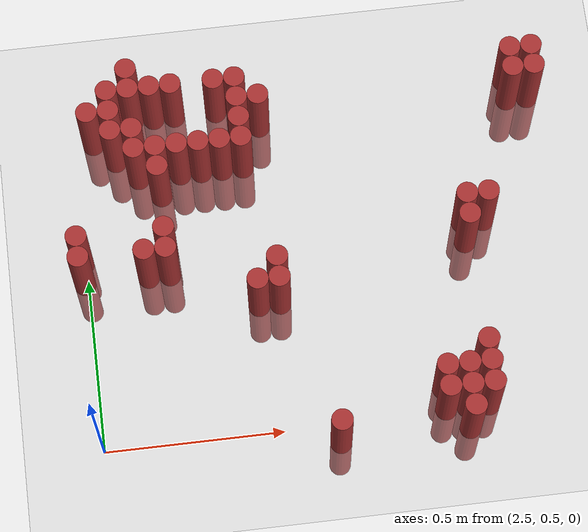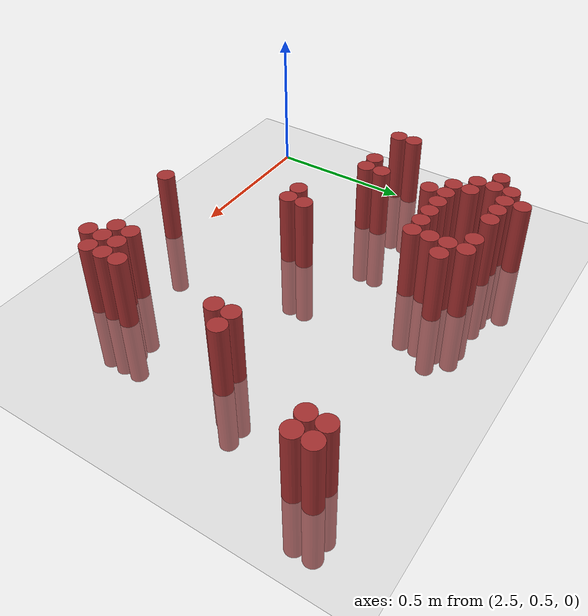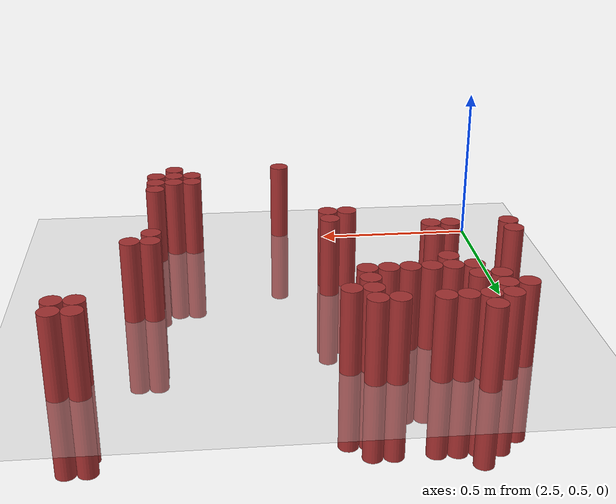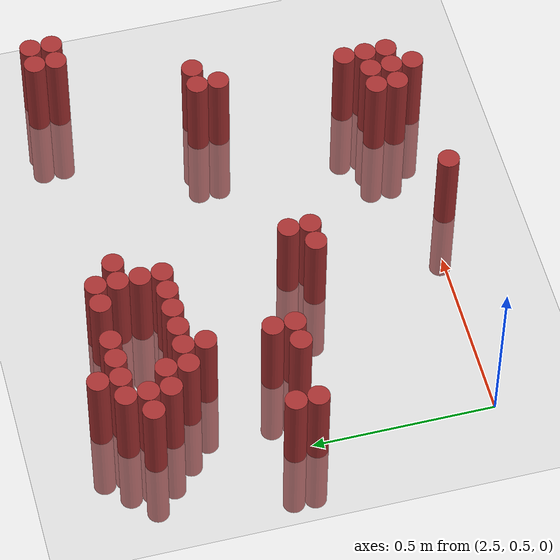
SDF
<sdf version="1.6">
 <world name="default">
  <model name="ground_plane">
   <static>1</static>
   <link name="link">
    <collision name="collision">
     <geometry><plane><normal>0 0 1</normal><size>100 100</size></plane></geometry>
     <surface><friction><ode><mu>100</mu><mu2>50</mu2></ode></friction></surface>
    </collision>
    <visual name="visual">
     <cast_shadows>0</cast_shadows>
     <geometry><plane><normal>0 0 1</normal><size>100 100</size></plane></geometry>
     <material>
      <script><uri>file://media/materials/scripts/gazebo.material</uri><name>Gazebo/Grey</name></script>
     </material>
    </visual>
   </link>
  </model>
  <model name="unit_cylinder_154">
   <static>1</static>
   <pose>2.670000 1.530000 0.000000 0.000000 0.000000 0.000000</pose>
   <link name="link">
    <inertial>
     <mass>1</mass>
     <inertia><ixx>0.145833</ixx><ixy>0</ixy><ixz>0</ixz><iyy>0.145833</iyy><iyz>0</iyz><izz>0.125</izz></inertia>
    </inertial>
    <collision name="collision">
     <geometry><cylinder><radius>0.030000</radius><length>0.5</length></cylinder></geometry>
    </collision>
    <visual name="visual">
     <geometry><cylinder><radius>0.030000</radius><length>0.5</length></cylinder></geometry>
     <material>
      <ambient>0.648000 0.192000 0.192000 1</ambient>
      <diffuse>0.648000 0.192000 0.192000 1</diffuse>
     </material>
     <material>
      <script><name>Gazebo/Grey</name><uri>file://media/materials/scripts/gazebo.material</uri></script>
     </material>
    </visual>
   </link>
  </model>
  <model name="unit_cylinder_157">
   <static>1</static>
   <pose>2.610000 1.470000 0.000000 0.000000 0.000000 0.000000</pose>
   <link name="link">
    <inertial>
     <mass>1</mass>
     <inertia><ixx>0.145833</ixx><ixy>0</ixy><ixz>0</ixz><iyy>0.145833</iyy><iyz>0</iyz><izz>0.125</izz></inertia>
    </inertial>
    <collision name="collision">
     <geometry><cylinder><radius>0.030000</radius><length>0.5</length></cylinder></geometry>
    </collision>
    <visual name="visual">
     <geometry><cylinder><radius>0.030000</radius><length>0.5</length></cylinder></geometry>
     <material>
      <ambient>0.648000 0.192000 0.192000 1</ambient>
      <diffuse>0.648000 0.192000 0.192000 1</diffuse>
     </material>
     <material>
      <script><name>Gazebo/Grey</name><uri>file://media/materials/scripts/gazebo.material</uri></script>
     </material>
    </visual>
   </link>
  </model>
  <model name="unit_cylinder_158">
   <static>1</static>
   <pose>2.670000 1.470000 0.000000 0.000000 0.000000 0.000000</pose>
   <link name="link">
    <inertial>
     <mass>1</mass>
     <inertia><ixx>0.145833</ixx><ixy>0</ixy><ixz>0</ixz><iyy>0.145833</iyy><iyz>0</iyz><izz>0.125</izz></inertia>
    </inertial>
    <collision name="collision">
     <geometry><cylinder><radius>0.030000</radius><length>0.5</length></cylinder></geometry>
    </collision>
    <visual name="visual">
     <geometry><cylinder><radius>0.030000</radius><length>0.5</length></cylinder></geometry>
     <material>
      <ambient>0.648000 0.192000 0.192000 1</ambient>
      <diffuse>0.648000 0.192000 0.192000 1</diffuse>
     </material>
     <material>
      <script><name>Gazebo/Grey</name><uri>file://media/materials/scripts/gazebo.material</uri></script>
     </material>
    </visual>
   </link>
  </model>
  <model name="unit_cylinder_159">
   <static>1</static>
   <pose>2.730000 1.470000 0.000000 0.000000 0.000000 0.000000</pose>
   <link name="link">
    <inertial>
     <mass>1</mass>
     <inertia><ixx>0.145833</ixx><ixy>0</ixy><ixz>0</ixz><iyy>0.145833</iyy><iyz>0</iyz><izz>0.125</izz></inertia>
    </inertial>
    <collision name="collision">
     <geometry><cylinder><radius>0.030000</radius><length>0.5</length></cylinder></geometry>
    </collision>
    <visual name="visual">
     <geometry><cylinder><radius>0.030000</radius><length>0.5</length></cylinder></geometry>
     <material>
      <ambient>0.648000 0.192000 0.192000 1</ambient>
      <diffuse>0.648000 0.192000 0.192000 1</diffuse>
     </material>
     <material>
      <script><name>Gazebo/Grey</name><uri>file://media/materials/scripts/gazebo.material</uri></script>
     </material>
    </visual>
   </link>
  </model>
  <model name="unit_cylinder_160">
   <static>1</static>
   <pose>2.790000 1.470000 0.000000 0.000000 0.000000 0.000000</pose>
   <link name="link">
    <inertial>
     <mass>1</mass>
     <inertia><ixx>0.145833</ixx><ixy>0</ixy><ixz>0</ixz><iyy>0.145833</iyy><iyz>0</iyz><izz>0.125</izz></inertia>
    </inertial>
    <collision name="collision">
     <geometry><cylinder><radius>0.030000</radius><length>0.5</length></cylinder></geometry>
    </collision>
    <visual name="visual">
     <geometry><cylinder><radius>0.030000</radius><length>0.5</length></cylinder></geometry>
     <material>
      <ambient>0.648000 0.192000 0.192000 1</ambient>
      <diffuse>0.648000 0.192000 0.192000 1</diffuse>
     </material>
     <material>
      <script><name>Gazebo/Grey</name><uri>file://media/materials/scripts/gazebo.material</uri></script>
     </material>
    </visual>
   </link>
  </model>
  <model name="unit_cylinder_161">
   <static>1</static>
   <pose>2.910000 1.470000 0.000000 0.000000 0.000000 0.000000</pose>
   <link name="link">
    <inertial>
     <mass>1</mass>
     <inertia><ixx>0.145833</ixx><ixy>0</ixy><ixz>0</ixz><iyy>0.145833</iyy><iyz>0</iyz><izz>0.125</izz></inertia>
    </inertial>
    <collision name="collision">
     <geometry><cylinder><radius>0.030000</radius><length>0.5</length></cylinder></geometry>
    </collision>
    <visual name="visual">
     <geometry><cylinder><radius>0.030000</radius><length>0.5</length></cylinder></geometry>
     <material>
      <ambient>0.648000 0.192000 0.192000 1</ambient>
      <diffuse>0.648000 0.192000 0.192000 1</diffuse>
     </material>
     <material>
      <script><name>Gazebo/Grey</name><uri>file://media/materials/scripts/gazebo.material</uri></script>
     </material>
    </visual>
   </link>
  </model>
  <model name="unit_cylinder_162">
   <static>1</static>
   <pose>2.970000 1.470000 0.000000 0.000000 0.000000 0.000000</pose>
   <link name="link">
    <inertial>
     <mass>1</mass>
     <inertia><ixx>0.145833</ixx><ixy>0</ixy><ixz>0</ixz><iyy>0.145833</iyy><iyz>0</iyz><izz>0.125</izz></inertia>
    </inertial>
    <collision name="collision">
     <geometry><cylinder><radius>0.030000</radius><length>0.5</length></cylinder></geometry>
    </collision>
    <visual name="visual">
     <geometry><cylinder><radius>0.030000</radius><length>0.5</length></cylinder></geometry>
     <material>
      <ambient>0.648000 0.192000 0.192000 1</ambient>
      <diffuse>0.648000 0.192000 0.192000 1</diffuse>
     </material>
     <material>
      <script><name>Gazebo/Grey</name><uri>file://media/materials/scripts/gazebo.material</uri></script>
     </material>
    </visual>
   </link>
  </model>
  <model name="unit_cylinder_163">
   <static>1</static>
   <pose>3.750000 1.470000 0.000000 0.000000 0.000000 0.000000</pose>
   <link name="link">
    <inertial>
     <mass>1</mass>
     <inertia><ixx>0.145833</ixx><ixy>0</ixy><ixz>0</ixz><iyy>0.145833</iyy><iyz>0</iyz><izz>0.125</izz></inertia>
    </inertial>
    <collision name="collision">
     <geometry><cylinder><radius>0.030000</radius><length>0.5</length></cylinder></geometry>
    </collision>
    <visual name="visual">
     <geometry><cylinder><radius>0.030000</radius><length>0.5</length></cylinder></geometry>
     <material>
      <ambient>0.648000 0.192000 0.192000 1</ambient>
      <diffuse>0.648000 0.192000 0.192000 1</diffuse>
     </material>
     <material>
      <script><name>Gazebo/Grey</name><uri>file://media/materials/scripts/gazebo.material</uri></script>
     </material>
    </visual>
   </link>
  </model>
  <model name="unit_cylinder_164">
   <static>1</static>
   <pose>3.810000 1.470000 0.000000 0.000000 0.000000 0.000000</pose>
   <link name="link">
    <inertial>
     <mass>1</mass>
     <inertia><ixx>0.145833</ixx><ixy>0</ixy><ixz>0</ixz><iyy>0.145833</iyy><iyz>0</iyz><izz>0.125</izz></inertia>
    </inertial>
    <collision name="collision">
     <geometry><cylinder><radius>0.030000</radius><length>0.5</length></cylinder></geometry>
    </collision>
    <visual name="visual">
     <geometry><cylinder><radius>0.030000</radius><length>0.5</length></cylinder></geometry>
     <material>
      <ambient>0.648000 0.192000 0.192000 1</ambient>
      <diffuse>0.648000 0.192000 0.192000 1</diffuse>
     </material>
     <material>
      <script><name>Gazebo/Grey</name><uri>file://media/materials/scripts/gazebo.material</uri></script>
     </material>
    </visual>
   </link>
  </model>
  <model name="unit_cylinder_165">
   <static>1</static>
   <pose>2.550000 1.410000 0.000000 0.000000 0.000000 0.000000</pose>
   <link name="link">
    <inertial>
     <mass>1</mass>
     <inertia><ixx>0.145833</ixx><ixy>0</ixy><ixz>0</ixz><iyy>0.145833</iyy><iyz>0</iyz><izz>0.125</izz></inertia>
    </inertial>
    <collision name="collision">
     <geometry><cylinder><radius>0.030000</radius><length>0.5</length></cylinder></geometry>
    </collision>
    <visual name="visual">
     <geometry><cylinder><radius>0.030000</radius><length>0.5</length></cylinder></geometry>
     <material>
      <ambient>0.648000 0.192000 0.192000 1</ambient>
      <diffuse>0.648000 0.192000 0.192000 1</diffuse>
     </material>
     <material>
      <script><name>Gazebo/Grey</name><uri>file://media/materials/scripts/gazebo.material</uri></script>
     </material>
    </visual>
   </link>
  </model>
  <model name="unit_cylinder_166">
   <static>1</static>
   <pose>2.610000 1.410000 0.000000 0.000000 0.000000 0.000000</pose>
   <link name="link">
    <inertial>
     <mass>1</mass>
     <inertia><ixx>0.145833</ixx><ixy>0</ixy><ixz>0</ixz><iyy>0.145833</iyy><iyz>0</iyz><izz>0.125</izz></inertia>
    </inertial>
    <collision name="collision">
     <geometry><cylinder><radius>0.030000</radius><length>0.5</length></cylinder></geometry>
    </collision>
    <visual name="visual">
     <geometry><cylinder><radius>0.030000</radius><length>0.5</length></cylinder></geometry>
     <material>
      <ambient>0.648000 0.192000 0.192000 1</ambient>
      <diffuse>0.648000 0.192000 0.192000 1</diffuse>
     </material>
     <material>
      <script><name>Gazebo/Grey</name><uri>file://media/materials/scripts/gazebo.material</uri></script>
     </material>
    </visual>
   </link>
  </model>
  <model name="unit_cylinder_167">
   <static>1</static>
   <pose>2.970000 1.410000 0.000000 0.000000 0.000000 0.000000</pose>
   <link name="link">
    <inertial>
     <mass>1</mass>
     <inertia><ixx>0.145833</ixx><ixy>0</ixy><ixz>0</ixz><iyy>0.145833</iyy><iyz>0</iyz><izz>0.125</izz></inertia>
    </inertial>
    <collision name="collision">
     <geometry><cylinder><radius>0.030000</radius><length>0.5</length></cylinder></geometry>
    </collision>
    <visual name="visual">
     <geometry><cylinder><radius>0.030000</radius><length>0.5</length></cylinder></geometry>
     <material>
      <ambient>0.648000 0.192000 0.192000 1</ambient>
      <diffuse>0.648000 0.192000 0.192000 1</diffuse>
     </material>
     <material>
      <script><name>Gazebo/Grey</name><uri>file://media/materials/scripts/gazebo.material</uri></script>
     </material>
    </visual>
   </link>
  </model>
  <model name="unit_cylinder_168">
   <static>1</static>
   <pose>3.030000 1.410000 0.000000 0.000000 0.000000 0.000000</pose>
   <link name="link">
    <inertial>
     <mass>1</mass>
     <inertia><ixx>0.145833</ixx><ixy>0</ixy><ixz>0</ixz><iyy>0.145833</iyy><iyz>0</iyz><izz>0.125</izz></inertia>
    </inertial>
    <collision name="collision">
     <geometry><cylinder><radius>0.030000</radius><length>0.5</length></cylinder></geometry>
    </collision>
    <visual name="visual">
     <geometry><cylinder><radius>0.030000</radius><length>0.5</length></cylinder></geometry>
     <material>
      <ambient>0.648000 0.192000 0.192000 1</ambient>
      <diffuse>0.648000 0.192000 0.192000 1</diffuse>
     </material>
     <material>
      <script><name>Gazebo/Grey</name><uri>file://media/materials/scripts/gazebo.material</uri></script>
     </material>
    </visual>
   </link>
  </model>
  <model name="unit_cylinder_169">
   <static>1</static>
   <pose>3.750000 1.410000 0.000000 0.000000 0.000000 0.000000</pose>
   <link name="link">
    <inertial>
     <mass>1</mass>
     <inertia><ixx>0.145833</ixx><ixy>0</ixy><ixz>0</ixz><iyy>0.145833</iyy><iyz>0</iyz><izz>0.125</izz></inertia>
    </inertial>
    <collision name="collision">
     <geometry><cylinder><radius>0.030000</radius><length>0.5</length></cylinder></geometry>
    </collision>
    <visual name="visual">
     <geometry><cylinder><radius>0.030000</radius><length>0.5</length></cylinder></geometry>
     <material>
      <ambient>0.648000 0.192000 0.192000 1</ambient>
      <diffuse>0.648000 0.192000 0.192000 1</diffuse>
     </material>
     <material>
      <script><name>Gazebo/Grey</name><uri>file://media/materials/scripts/gazebo.material</uri></script>
     </material>
    </visual>
   </link>
  </model>
  <model name="unit_cylinder_170">
   <static>1</static>
   <pose>3.810000 1.410000 0.000000 0.000000 0.000000 0.000000</pose>
   <link name="link">
    <inertial>
     <mass>1</mass>
     <inertia><ixx>0.145833</ixx><ixy>0</ixy><ixz>0</ixz><iyy>0.145833</iyy><iyz>0</iyz><izz>0.125</izz></inertia>
    </inertial>
    <collision name="collision">
     <geometry><cylinder><radius>0.030000</radius><length>0.5</length></cylinder></geometry>
    </collision>
    <visual name="visual">
     <geometry><cylinder><radius>0.030000</radius><length>0.5</length></cylinder></geometry>
     <material>
      <ambient>0.648000 0.192000 0.192000 1</ambient>
      <diffuse>0.648000 0.192000 0.192000 1</diffuse>
     </material>
     <material>
      <script><name>Gazebo/Grey</name><uri>file://media/materials/scripts/gazebo.material</uri></script>
     </material>
    </visual>
   </link>
  </model>
  <model name="unit_cylinder_172">
   <static>1</static>
   <pose>2.610000 1.350000 0.000000 0.000000 0.000000 0.000000</pose>
   <link name="link">
    <inertial>
     <mass>1</mass>
     <inertia><ixx>0.145833</ixx><ixy>0</ixy><ixz>0</ixz><iyy>0.145833</iyy><iyz>0</iyz><izz>0.125</izz></inertia>
    </inertial>
    <collision name="collision">
     <geometry><cylinder><radius>0.030000</radius><length>0.5</length></cylinder></geometry>
    </collision>
    <visual name="visual">
     <geometry><cylinder><radius>0.030000</radius><length>0.5</length></cylinder></geometry>
     <material>
      <ambient>0.648000 0.192000 0.192000 1</ambient>
      <diffuse>0.648000 0.192000 0.192000 1</diffuse>
     </material>
     <material>
      <script><name>Gazebo/Grey</name><uri>file://media/materials/scripts/gazebo.material</uri></script>
     </material>
    </visual>
   </link>
  </model>
  <model name="unit_cylinder_173">
   <static>1</static>
   <pose>2.670000 1.350000 0.000000 0.000000 0.000000 0.000000</pose>
   <link name="link">
    <inertial>
     <mass>1</mass>
     <inertia><ixx>0.145833</ixx><ixy>0</ixy><ixz>0</ixz><iyy>0.145833</iyy><iyz>0</iyz><izz>0.125</izz></inertia>
    </inertial>
    <collision name="collision">
     <geometry><cylinder><radius>0.030000</radius><length>0.5</length></cylinder></geometry>
    </collision>
    <visual name="visual">
     <geometry><cylinder><radius>0.030000</radius><length>0.5</length></cylinder></geometry>
     <material>
      <ambient>0.648000 0.192000 0.192000 1</ambient>
      <diffuse>0.648000 0.192000 0.192000 1</diffuse>
     </material>
     <material>
      <script><name>Gazebo/Grey</name><uri>file://media/materials/scripts/gazebo.material</uri></script>
     </material>
    </visual>
   </link>
  </model>
  <model name="unit_cylinder_174">
   <static>1</static>
   <pose>2.970000 1.350000 0.000000 0.000000 0.000000 0.000000</pose>
   <link name="link">
    <inertial>
     <mass>1</mass>
     <inertia><ixx>0.145833</ixx><ixy>0</ixy><ixz>0</ixz><iyy>0.145833</iyy><iyz>0</iyz><izz>0.125</izz></inertia>
    </inertial>
    <collision name="collision">
     <geometry><cylinder><radius>0.030000</radius><length>0.5</length></cylinder></geometry>
    </collision>
    <visual name="visual">
     <geometry><cylinder><radius>0.030000</radius><length>0.5</length></cylinder></geometry>
     <material>
      <ambient>0.648000 0.192000 0.192000 1</ambient>
      <diffuse>0.648000 0.192000 0.192000 1</diffuse>
     </material>
     <material>
      <script><name>Gazebo/Grey</name><uri>file://media/materials/scripts/gazebo.material</uri></script>
     </material>
    </visual>
   </link>
  </model>
  <model name="unit_cylinder_177">
   <static>1</static>
   <pose>2.670000 1.290000 0.000000 0.000000 0.000000 0.000000</pose>
   <link name="link">
    <inertial>
     <mass>1</mass>
     <inertia><ixx>0.145833</ixx><ixy>0</ixy><ixz>0</ixz><iyy>0.145833</iyy><iyz>0</iyz><izz>0.125</izz></inertia>
    </inertial>
    <collision name="collision">
     <geometry><cylinder><radius>0.030000</radius><length>0.5</length></cylinder></geometry>
    </collision>
    <visual name="visual">
     <geometry><cylinder><radius>0.030000</radius><length>0.5</length></cylinder></geometry>
     <material>
      <ambient>0.648000 0.192000 0.192000 1</ambient>
      <diffuse>0.648000 0.192000 0.192000 1</diffuse>
     </material>
     <material>
      <script><name>Gazebo/Grey</name><uri>file://media/materials/scripts/gazebo.material</uri></script>
     </material>
    </visual>
   </link>
  </model>
  <model name="unit_cylinder_178">
   <static>1</static>
   <pose>2.730000 1.290000 0.000000 0.000000 0.000000 0.000000</pose>
   <link name="link">
    <inertial>
     <mass>1</mass>
     <inertia><ixx>0.145833</ixx><ixy>0</ixy><ixz>0</ixz><iyy>0.145833</iyy><iyz>0</iyz><izz>0.125</izz></inertia>
    </inertial>
    <collision name="collision">
     <geometry><cylinder><radius>0.030000</radius><length>0.5</length></cylinder></geometry>
    </collision>
    <visual name="visual">
     <geometry><cylinder><radius>0.030000</radius><length>0.5</length></cylinder></geometry>
     <material>
      <ambient>0.648000 0.192000 0.192000 1</ambient>
      <diffuse>0.648000 0.192000 0.192000 1</diffuse>
     </material>
     <material>
      <script><name>Gazebo/Grey</name><uri>file://media/materials/scripts/gazebo.material</uri></script>
     </material>
    </visual>
   </link>
  </model>
  <model name="unit_cylinder_179">
   <static>1</static>
   <pose>2.790000 1.290000 0.000000 0.000000 0.000000 0.000000</pose>
   <link name="link">
    <inertial>
     <mass>1</mass>
     <inertia><ixx>0.145833</ixx><ixy>0</ixy><ixz>0</ixz><iyy>0.145833</iyy><iyz>0</iyz><izz>0.125</izz></inertia>
    </inertial>
    <collision name="collision">
     <geometry><cylinder><radius>0.030000</radius><length>0.5</length></cylinder></geometry>
    </collision>
    <visual name="visual">
     <geometry><cylinder><radius>0.030000</radius><length>0.5</length></cylinder></geometry>
     <material>
      <ambient>0.648000 0.192000 0.192000 1</ambient>
      <diffuse>0.648000 0.192000 0.192000 1</diffuse>
     </material>
     <material>
      <script><name>Gazebo/Grey</name><uri>file://media/materials/scripts/gazebo.material</uri></script>
     </material>
    </visual>
   </link>
  </model>
  <model name="unit_cylinder_180">
   <static>1</static>
   <pose>2.850000 1.290000 0.000000 0.000000 0.000000 0.000000</pose>
   <link name="link">
    <inertial>
     <mass>1</mass>
     <inertia><ixx>0.145833</ixx><ixy>0</ixy><ixz>0</ixz><iyy>0.145833</iyy><iyz>0</iyz><izz>0.125</izz></inertia>
    </inertial>
    <collision name="collision">
     <geometry><cylinder><radius>0.030000</radius><length>0.5</length></cylinder></geometry>
    </collision>
    <visual name="visual">
     <geometry><cylinder><radius>0.030000</radius><length>0.5</length></cylinder></geometry>
     <material>
      <ambient>0.648000 0.192000 0.192000 1</ambient>
      <diffuse>0.648000 0.192000 0.192000 1</diffuse>
     </material>
     <material>
      <script><name>Gazebo/Grey</name><uri>file://media/materials/scripts/gazebo.material</uri></script>
     </material>
    </visual>
   </link>
  </model>
  <model name="unit_cylinder_181">
   <static>1</static>
   <pose>2.910000 1.290000 0.000000 0.000000 0.000000 0.000000</pose>
   <link name="link">
    <inertial>
     <mass>1</mass>
     <inertia><ixx>0.145833</ixx><ixy>0</ixy><ixz>0</ixz><iyy>0.145833</iyy><iyz>0</iyz><izz>0.125</izz></inertia>
    </inertial>
    <collision name="collision">
     <geometry><cylinder><radius>0.030000</radius><length>0.5</length></cylinder></geometry>
    </collision>
    <visual name="visual">
     <geometry><cylinder><radius>0.030000</radius><length>0.5</length></cylinder></geometry>
     <material>
      <ambient>0.648000 0.192000 0.192000 1</ambient>
      <diffuse>0.648000 0.192000 0.192000 1</diffuse>
     </material>
     <material>
      <script><name>Gazebo/Grey</name><uri>file://media/materials/scripts/gazebo.material</uri></script>
     </material>
    </visual>
   </link>
  </model>
  <model name="unit_cylinder_182">
   <static>1</static>
   <pose>2.970000 1.290000 0.000000 0.000000 0.000000 0.000000</pose>
   <link name="link">
    <inertial>
     <mass>1</mass>
     <inertia><ixx>0.145833</ixx><ixy>0</ixy><ixz>0</ixz><iyy>0.145833</iyy><iyz>0</iyz><izz>0.125</izz></inertia>
    </inertial>
    <collision name="collision">
     <geometry><cylinder><radius>0.030000</radius><length>0.5</length></cylinder></geometry>
    </collision>
    <visual name="visual">
     <geometry><cylinder><radius>0.030000</radius><length>0.5</length></cylinder></geometry>
     <material>
      <ambient>0.648000 0.192000 0.192000 1</ambient>
      <diffuse>0.648000 0.192000 0.192000 1</diffuse>
     </material>
     <material>
      <script><name>Gazebo/Grey</name><uri>file://media/materials/scripts/gazebo.material</uri></script>
     </material>
    </visual>
   </link>
  </model>
  <model name="unit_cylinder_184">
   <static>1</static>
   <pose>2.730000 1.230000 0.000000 0.000000 0.000000 0.000000</pose>
   <link name="link">
    <inertial>
     <mass>1</mass>
     <inertia><ixx>0.145833</ixx><ixy>0</ixy><ixz>0</ixz><iyy>0.145833</iyy><iyz>0</iyz><izz>0.125</izz></inertia>
    </inertial>
    <collision name="collision">
     <geometry><cylinder><radius>0.030000</radius><length>0.5</length></cylinder></geometry>
    </collision>
    <visual name="visual">
     <geometry><cylinder><radius>0.030000</radius><length>0.5</length></cylinder></geometry>
     <material>
      <ambient>0.648000 0.192000 0.192000 1</ambient>
      <diffuse>0.648000 0.192000 0.192000 1</diffuse>
     </material>
     <material>
      <script><name>Gazebo/Grey</name><uri>file://media/materials/scripts/gazebo.material</uri></script>
     </material>
    </visual>
   </link>
  </model>
  <model name="unit_cylinder_188">
   <static>1</static>
   <pose>2.490000 1.050000 0.000000 0.000000 0.000000 0.000000</pose>
   <link name="link">
    <inertial>
     <mass>1</mass>
     <inertia><ixx>0.145833</ixx><ixy>0</ixy><ixz>0</ixz><iyy>0.145833</iyy><iyz>0</iyz><izz>0.125</izz></inertia>
    </inertial>
    <collision name="collision">
     <geometry><cylinder><radius>0.030000</radius><length>0.5</length></cylinder></geometry>
    </collision>
    <visual name="visual">
     <geometry><cylinder><radius>0.030000</radius><length>0.5</length></cylinder></geometry>
     <material>
      <ambient>0.648000 0.192000 0.192000 1</ambient>
      <diffuse>0.648000 0.192000 0.192000 1</diffuse>
     </material>
     <material>
      <script><name>Gazebo/Grey</name><uri>file://media/materials/scripts/gazebo.material</uri></script>
     </material>
    </visual>
   </link>
  </model>
  <model name="unit_cylinder_189">
   <static>1</static>
   <pose>2.730000 1.050000 0.000000 0.000000 0.000000 0.000000</pose>
   <link name="link">
    <inertial>
     <mass>1</mass>
     <inertia><ixx>0.145833</ixx><ixy>0</ixy><ixz>0</ixz><iyy>0.145833</iyy><iyz>0</iyz><izz>0.125</izz></inertia>
    </inertial>
    <collision name="collision">
     <geometry><cylinder><radius>0.030000</radius><length>0.5</length></cylinder></geometry>
    </collision>
    <visual name="visual">
     <geometry><cylinder><radius>0.030000</radius><length>0.5</length></cylinder></geometry>
     <material>
      <ambient>0.648000 0.192000 0.192000 1</ambient>
      <diffuse>0.648000 0.192000 0.192000 1</diffuse>
     </material>
     <material>
      <script><name>Gazebo/Grey</name><uri>file://media/materials/scripts/gazebo.material</uri></script>
     </material>
    </visual>
   </link>
  </model>
  <model name="unit_cylinder_190">
   <static>1</static>
   <pose>3.570000 1.050000 0.000000 0.000000 0.000000 0.000000</pose>
   <link name="link">
    <inertial>
     <mass>1</mass>
     <inertia><ixx>0.145833</ixx><ixy>0</ixy><ixz>0</ixz><iyy>0.145833</iyy><iyz>0</iyz><izz>0.125</izz></inertia>
    </inertial>
    <collision name="collision">
     <geometry><cylinder><radius>0.030000</radius><length>0.5</length></cylinder></geometry>
    </collision>
    <visual name="visual">
     <geometry><cylinder><radius>0.030000</radius><length>0.5</length></cylinder></geometry>
     <material>
      <ambient>0.648000 0.192000 0.192000 1</ambient>
      <diffuse>0.648000 0.192000 0.192000 1</diffuse>
     </material>
     <material>
      <script><name>Gazebo/Grey</name><uri>file://media/materials/scripts/gazebo.material</uri></script>
     </material>
    </visual>
   </link>
  </model>
  <model name="unit_cylinder_191">
   <static>1</static>
   <pose>3.630000 1.050000 0.000000 0.000000 0.000000 0.000000</pose>
   <link name="link">
    <inertial>
     <mass>1</mass>
     <inertia><ixx>0.145833</ixx><ixy>0</ixy><ixz>0</ixz><iyy>0.145833</iyy><iyz>0</iyz><izz>0.125</izz></inertia>
    </inertial>
    <collision name="collision">
     <geometry><cylinder><radius>0.030000</radius><length>0.5</length></cylinder></geometry>
    </collision>
    <visual name="visual">
     <geometry><cylinder><radius>0.030000</radius><length>0.5</length></cylinder></geometry>
     <material>
      <ambient>0.648000 0.192000 0.192000 1</ambient>
      <diffuse>0.648000 0.192000 0.192000 1</diffuse>
     </material>
     <material>
      <script><name>Gazebo/Grey</name><uri>file://media/materials/scripts/gazebo.material</uri></script>
     </material>
    </visual>
   </link>
  </model>
  <model name="unit_cylinder_194">
   <static>1</static>
   <pose>2.490000 0.990000 0.000000 0.000000 0.000000 0.000000</pose>
   <link name="link">
    <inertial>
     <mass>1</mass>
     <inertia><ixx>0.145833</ixx><ixy>0</ixy><ixz>0</ixz><iyy>0.145833</iyy><iyz>0</iyz><izz>0.125</izz></inertia>
    </inertial>
    <collision name="collision">
     <geometry><cylinder><radius>0.030000</radius><length>0.5</length></cylinder></geometry>
    </collision>
    <visual name="visual">
     <geometry><cylinder><radius>0.030000</radius><length>0.5</length></cylinder></geometry>
     <material>
      <ambient>0.648000 0.192000 0.192000 1</ambient>
      <diffuse>0.648000 0.192000 0.192000 1</diffuse>
     </material>
     <material>
      <script><name>Gazebo/Grey</name><uri>file://media/materials/scripts/gazebo.material</uri></script>
     </material>
    </visual>
   </link>
  </model>
  <model name="unit_cylinder_195">
   <static>1</static>
   <pose>2.670000 0.990000 0.000000 0.000000 0.000000 0.000000</pose>
   <link name="link">
    <inertial>
     <mass>1</mass>
     <inertia><ixx>0.145833</ixx><ixy>0</ixy><ixz>0</ixz><iyy>0.145833</iyy><iyz>0</iyz><izz>0.125</izz></inertia>
    </inertial>
    <collision name="collision">
     <geometry><cylinder><radius>0.030000</radius><length>0.5</length></cylinder></geometry>
    </collision>
    <visual name="visual">
     <geometry><cylinder><radius>0.030000</radius><length>0.5</length></cylinder></geometry>
     <material>
      <ambient>0.648000 0.192000 0.192000 1</ambient>
      <diffuse>0.648000 0.192000 0.192000 1</diffuse>
     </material>
     <material>
      <script><name>Gazebo/Grey</name><uri>file://media/materials/scripts/gazebo.material</uri></script>
     </material>
    </visual>
   </link>
  </model>
  <model name="unit_cylinder_196">
   <static>1</static>
   <pose>2.730000 0.990000 0.000000 0.000000 0.000000 0.000000</pose>
   <link name="link">
    <inertial>
     <mass>1</mass>
     <inertia><ixx>0.145833</ixx><ixy>0</ixy><ixz>0</ixz><iyy>0.145833</iyy><iyz>0</iyz><izz>0.125</izz></inertia>
    </inertial>
    <collision name="collision">
     <geometry><cylinder><radius>0.030000</radius><length>0.5</length></cylinder></geometry>
    </collision>
    <visual name="visual">
     <geometry><cylinder><radius>0.030000</radius><length>0.5</length></cylinder></geometry>
     <material>
      <ambient>0.648000 0.192000 0.192000 1</ambient>
      <diffuse>0.648000 0.192000 0.192000 1</diffuse>
     </material>
     <material>
      <script><name>Gazebo/Grey</name><uri>file://media/materials/scripts/gazebo.material</uri></script>
     </material>
    </visual>
   </link>
  </model>
  <model name="unit_cylinder_197">
   <static>1</static>
   <pose>3.570000 0.990000 0.000000 0.000000 0.000000 0.000000</pose>
   <link name="link">
    <inertial>
     <mass>1</mass>
     <inertia><ixx>0.145833</ixx><ixy>0</ixy><ixz>0</ixz><iyy>0.145833</iyy><iyz>0</iyz><izz>0.125</izz></inertia>
    </inertial>
    <collision name="collision">
     <geometry><cylinder><radius>0.030000</radius><length>0.5</length></cylinder></geometry>
    </collision>
    <visual name="visual">
     <geometry><cylinder><radius>0.030000</radius><length>0.5</length></cylinder></geometry>
     <material>
      <ambient>0.648000 0.192000 0.192000 1</ambient>
      <diffuse>0.648000 0.192000 0.192000 1</diffuse>
     </material>
     <material>
      <script><name>Gazebo/Grey</name><uri>file://media/materials/scripts/gazebo.material</uri></script>
     </material>
    </visual>
   </link>
  </model>
  <model name="unit_cylinder_198">
   <static>1</static>
   <pose>3.030000 0.930000 0.000000 0.000000 0.000000 0.000000</pose>
   <link name="link">
    <inertial>
     <mass>1</mass>
     <inertia><ixx>0.145833</ixx><ixy>0</ixy><ixz>0</ixz><iyy>0.145833</iyy><iyz>0</iyz><izz>0.125</izz></inertia>
    </inertial>
    <collision name="collision">
     <geometry><cylinder><radius>0.030000</radius><length>0.5</length></cylinder></geometry>
    </collision>
    <visual name="visual">
     <geometry><cylinder><radius>0.030000</radius><length>0.5</length></cylinder></geometry>
     <material>
      <ambient>0.648000 0.192000 0.192000 1</ambient>
      <diffuse>0.648000 0.192000 0.192000 1</diffuse>
     </material>
     <material>
      <script><name>Gazebo/Grey</name><uri>file://media/materials/scripts/gazebo.material</uri></script>
     </material>
    </visual>
   </link>
  </model>
  <model name="unit_cylinder_199">
   <static>1</static>
   <pose>2.970000 0.870000 0.000000 0.000000 0.000000 0.000000</pose>
   <link name="link">
    <inertial>
     <mass>1</mass>
     <inertia><ixx>0.145833</ixx><ixy>0</ixy><ixz>0</ixz><iyy>0.145833</iyy><iyz>0</iyz><izz>0.125</izz></inertia>
    </inertial>
    <collision name="collision">
     <geometry><cylinder><radius>0.030000</radius><length>0.5</length></cylinder></geometry>
    </collision>
    <visual name="visual">
     <geometry><cylinder><radius>0.030000</radius><length>0.5</length></cylinder></geometry>
     <material>
      <ambient>0.648000 0.192000 0.192000 1</ambient>
      <diffuse>0.648000 0.192000 0.192000 1</diffuse>
     </material>
     <material>
      <script><name>Gazebo/Grey</name><uri>file://media/materials/scripts/gazebo.material</uri></script>
     </material>
    </visual>
   </link>
  </model>
  <model name="unit_cylinder_200">
   <static>1</static>
   <pose>3.030000 0.870000 0.000000 0.000000 0.000000 0.000000</pose>
   <link name="link">
    <inertial>
     <mass>1</mass>
     <inertia><ixx>0.145833</ixx><ixy>0</ixy><ixz>0</ixz><iyy>0.145833</iyy><iyz>0</iyz><izz>0.125</izz></inertia>
    </inertial>
    <collision name="collision">
     <geometry><cylinder><radius>0.030000</radius><length>0.5</length></cylinder></geometry>
    </collision>
    <visual name="visual">
     <geometry><cylinder><radius>0.030000</radius><length>0.5</length></cylinder></geometry>
     <material>
      <ambient>0.648000 0.192000 0.192000 1</ambient>
      <diffuse>0.648000 0.192000 0.192000 1</diffuse>
     </material>
     <material>
      <script><name>Gazebo/Grey</name><uri>file://media/materials/scripts/gazebo.material</uri></script>
     </material>
    </visual>
   </link>
  </model>
  <model name="unit_cylinder_201">
   <static>1</static>
   <pose>3.570000 0.630000 0.000000 0.000000 0.000000 0.000000</pose>
   <link name="link">
    <inertial>
     <mass>1</mass>
     <inertia><ixx>0.145833</ixx><ixy>0</ixy><ixz>0</ixz><iyy>0.145833</iyy><iyz>0</iyz><izz>0.125</izz></inertia>
    </inertial>
    <collision name="collision">
     <geometry><cylinder><radius>0.030000</radius><length>0.5</length></cylinder></geometry>
    </collision>
    <visual name="visual">
     <geometry><cylinder><radius>0.030000</radius><length>0.5</length></cylinder></geometry>
     <material>
      <ambient>0.648000 0.192000 0.192000 1</ambient>
      <diffuse>0.648000 0.192000 0.192000 1</diffuse>
     </material>
     <material>
      <script><name>Gazebo/Grey</name><uri>file://media/materials/scripts/gazebo.material</uri></script>
     </material>
    </visual>
   </link>
  </model>
  <model name="unit_cylinder_202">
   <static>1</static>
   <pose>3.450000 0.570000 0.000000 0.000000 0.000000 0.000000</pose>
   <link name="link">
    <inertial>
     <mass>1</mass>
     <inertia><ixx>0.145833</ixx><ixy>0</ixy><ixz>0</ixz><iyy>0.145833</iyy><iyz>0</iyz><izz>0.125</izz></inertia>
    </inertial>
    <collision name="collision">
     <geometry><cylinder><radius>0.030000</radius><length>0.5</length></cylinder></geometry>
    </collision>
    <visual name="visual">
     <geometry><cylinder><radius>0.030000</radius><length>0.5</length></cylinder></geometry>
     <material>
      <ambient>0.648000 0.192000 0.192000 1</ambient>
      <diffuse>0.648000 0.192000 0.192000 1</diffuse>
     </material>
     <material>
      <script><name>Gazebo/Grey</name><uri>file://media/materials/scripts/gazebo.material</uri></script>
     </material>
    </visual>
   </link>
  </model>
  <model name="unit_cylinder_203">
   <static>1</static>
   <pose>3.510000 0.570000 0.000000 0.000000 0.000000 0.000000</pose>
   <link name="link">
    <inertial>
     <mass>1</mass>
     <inertia><ixx>0.145833</ixx><ixy>0</ixy><ixz>0</ixz><iyy>0.145833</iyy><iyz>0</iyz><izz>0.125</izz></inertia>
    </inertial>
    <collision name="collision">
     <geometry><cylinder><radius>0.030000</radius><length>0.5</length></cylinder></geometry>
    </collision>
    <visual name="visual">
     <geometry><cylinder><radius>0.030000</radius><length>0.5</length></cylinder></geometry>
     <material>
      <ambient>0.648000 0.192000 0.192000 1</ambient>
      <diffuse>0.648000 0.192000 0.192000 1</diffuse>
     </material>
     <material>
      <script><name>Gazebo/Grey</name><uri>file://media/materials/scripts/gazebo.material</uri></script>
     </material>
    </visual>
   </link>
  </model>
  <model name="unit_cylinder_204">
   <static>1</static>
   <pose>3.570000 0.570000 0.000000 0.000000 0.000000 0.000000</pose>
   <link name="link">
    <inertial>
     <mass>1</mass>
     <inertia><ixx>0.145833</ixx><ixy>0</ixy><ixz>0</ixz><iyy>0.145833</iyy><iyz>0</iyz><izz>0.125</izz></inertia>
    </inertial>
    <collision name="collision">
     <geometry><cylinder><radius>0.030000</radius><length>0.5</length></cylinder></geometry>
    </collision>
    <visual name="visual">
     <geometry><cylinder><radius>0.030000</radius><length>0.5</length></cylinder></geometry>
     <material>
      <ambient>0.648000 0.192000 0.192000 1</ambient>
      <diffuse>0.648000 0.192000 0.192000 1</diffuse>
     </material>
     <material>
      <script><name>Gazebo/Grey</name><uri>file://media/materials/scripts/gazebo.material</uri></script>
     </material>
    </visual>
   </link>
  </model>
  <model name="unit_cylinder_205">
   <static>1</static>
   <pose>3.450000 0.510000 0.000000 0.000000 0.000000 0.000000</pose>
   <link name="link">
    <inertial>
     <mass>1</mass>
     <inertia><ixx>0.145833</ixx><ixy>0</ixy><ixz>0</ixz><iyy>0.145833</iyy><iyz>0</iyz><izz>0.125</izz></inertia>
    </inertial>
    <collision name="collision">
     <geometry><cylinder><radius>0.030000</radius><length>0.5</length></cylinder></geometry>
    </collision>
    <visual name="visual">
     <geometry><cylinder><radius>0.030000</radius><length>0.5</length></cylinder></geometry>
     <material>
      <ambient>0.648000 0.192000 0.192000 1</ambient>
      <diffuse>0.648000 0.192000 0.192000 1</diffuse>
     </material>
     <material>
      <script><name>Gazebo/Grey</name><uri>file://media/materials/scripts/gazebo.material</uri></script>
     </material>
    </visual>
   </link>
  </model>
  <model name="unit_cylinder_206">
   <static>1</static>
   <pose>3.510000 0.510000 0.000000 0.000000 0.000000 0.000000</pose>
   <link name="link">
    <inertial>
     <mass>1</mass>
     <inertia><ixx>0.145833</ixx><ixy>0</ixy><ixz>0</ixz><iyy>0.145833</iyy><iyz>0</iyz><izz>0.125</izz></inertia>
    </inertial>
    <collision name="collision">
     <geometry><cylinder><radius>0.030000</radius><length>0.5</length></cylinder></geometry>
    </collision>
    <visual name="visual">
     <geometry><cylinder><radius>0.030000</radius><length>0.5</length></cylinder></geometry>
     <material>
      <ambient>0.648000 0.192000 0.192000 1</ambient>
      <diffuse>0.648000 0.192000 0.192000 1</diffuse>
     </material>
     <material>
      <script><name>Gazebo/Grey</name><uri>file://media/materials/scripts/gazebo.material</uri></script>
     </material>
    </visual>
   </link>
  </model>
  <model name="unit_cylinder_207">
   <static>1</static>
   <pose>3.570000 0.510000 0.000000 0.000000 0.000000 0.000000</pose>
   <link name="link">
    <inertial>
     <mass>1</mass>
     <inertia><ixx>0.145833</ixx><ixy>0</ixy><ixz>0</ixz><iyy>0.145833</iyy><iyz>0</iyz><izz>0.125</izz></inertia>
    </inertial>
    <collision name="collision">
     <geometry><cylinder><radius>0.030000</radius><length>0.5</length></cylinder></geometry>
    </collision>
    <visual name="visual">
     <geometry><cylinder><radius>0.030000</radius><length>0.5</length></cylinder></geometry>
     <material>
      <ambient>0.648000 0.192000 0.192000 1</ambient>
      <diffuse>0.648000 0.192000 0.192000 1</diffuse>
     </material>
     <material>
      <script><name>Gazebo/Grey</name><uri>file://media/materials/scripts/gazebo.material</uri></script>
     </material>
    </visual>
   </link>
  </model>
  <model name="unit_cylinder_211">
   <static>1</static>
   <pose>3.150000 0.450000 0.000000 0.000000 0.000000 0.000000</pose>
   <link name="link">
    <inertial>
     <mass>1</mass>
     <inertia><ixx>0.145833</ixx><ixy>0</ixy><ixz>0</ixz><iyy>0.145833</iyy><iyz>0</iyz><izz>0.125</izz></inertia>
    </inertial>
    <collision name="collision">
     <geometry><cylinder><radius>0.030000</radius><length>0.5</length></cylinder></geometry>
    </collision>
    <visual name="visual">
     <geometry><cylinder><radius>0.030000</radius><length>0.5</length></cylinder></geometry>
     <material>
      <ambient>0.648000 0.192000 0.192000 1</ambient>
      <diffuse>0.648000 0.192000 0.192000 1</diffuse>
     </material>
     <material>
      <script><name>Gazebo/Grey</name><uri>file://media/materials/scripts/gazebo.material</uri></script>
     </material>
    </visual>
   </link>
  </model>
  <model name="unit_cylinder_212">
   <static>1</static>
   <pose>3.510000 0.450000 0.000000 0.000000 0.000000 0.000000</pose>
   <link name="link">
    <inertial>
     <mass>1</mass>
     <inertia><ixx>0.145833</ixx><ixy>0</ixy><ixz>0</ixz><iyy>0.145833</iyy><iyz>0</iyz><izz>0.125</izz></inertia>
    </inertial>
    <collision name="collision">
     <geometry><cylinder><radius>0.030000</radius><length>0.5</length></cylinder></geometry>
    </collision>
    <visual name="visual">
     <geometry><cylinder><radius>0.030000</radius><length>0.5</length></cylinder></geometry>
     <material>
      <ambient>0.648000 0.192000 0.192000 1</ambient>
      <diffuse>0.648000 0.192000 0.192000 1</diffuse>
     </material>
     <material>
      <script><name>Gazebo/Grey</name><uri>file://media/materials/scripts/gazebo.material</uri></script>
     </material>
    </visual>
   </link>
  </model>
 </world>
</sdf>
